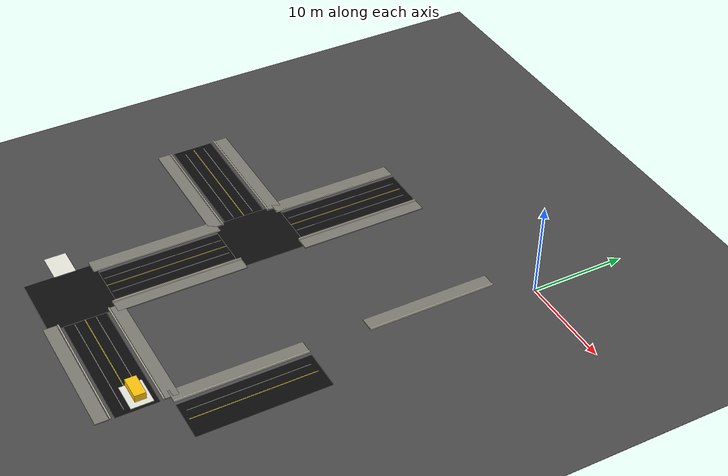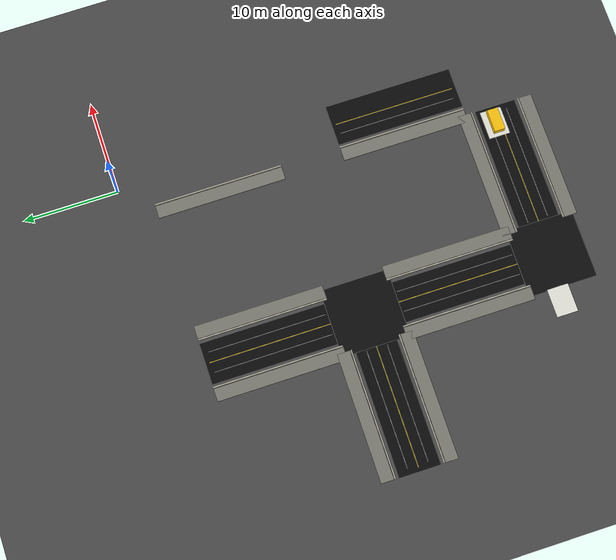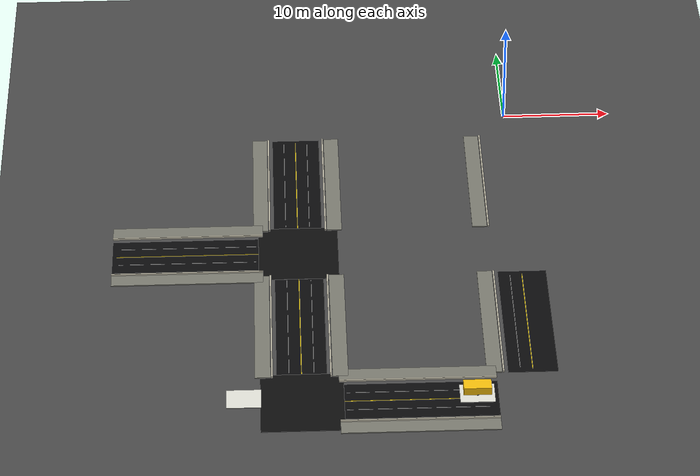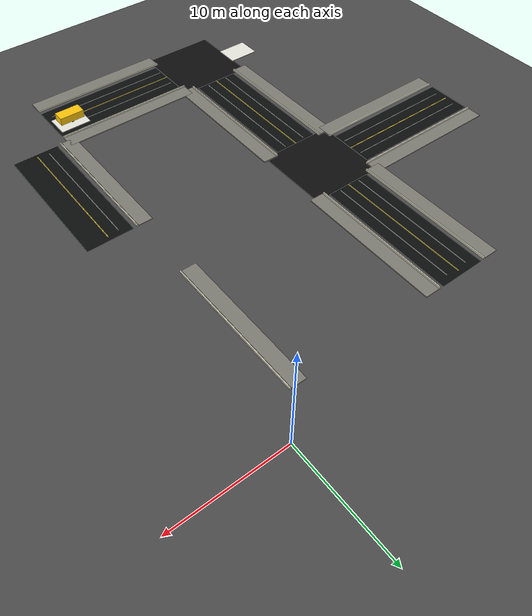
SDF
<sdf version="1.9">
 <world name="smart_city_world">
  <model name="ground">
   <static>true</static>
   <link name="link">
    <collision name="collision"><geometry><box><size>145 145 0.05</size></box></geometry></collision>
    <visual name="visual">
     <geometry><box><size>145 145 0.05</size></box></geometry>
     <material><ambient>0.30 0.30 0.30 1</ambient><diffuse>0.30 0.30 0.30 1</diffuse></material>
    </visual>
   </link>
  </model>
  <model name="road_e13">
   <static>true</static>
   <pose>-30.000 -20.000 0.018 0 0 0.000000</pose>
   <link name="link">
    <collision name="collision"><geometry><box><size>13.600 4.350 0.030</size></box></geometry></collision>
    <visual name="visual">
     <geometry><box><size>13.600 4.350 0.030</size></box></geometry>
     <material><ambient>0.045 0.047 0.05 1</ambient><diffuse>0.045 0.047 0.05 1</diffuse></material>
    </visual>
   </link>
  </model>
  <model name="center_line_e13">
   <static>true</static>
   <pose>-30.000 -20.000 0.052 0 0 0.000000</pose>
   <link name="link">
    <visual name="visual">
     <geometry><box><size>12.800 0.070 0.010</size></box></geometry>
     <material><ambient>1 0.86 0.05 1</ambient><diffuse>1 0.86 0.05 1</diffuse></material>
    </visual>
   </link>
  </model>
  <model name="sidewalk_e13_L">
   <static>true</static>
   <pose>-30.000 -16.650 0.075 0 0 0.000000</pose>
   <link name="link">
    <visual name="visual">
     <geometry><box><size>13.600 1.350 0.100</size></box></geometry>
     <material><ambient>0.5 0.5 0.46 1</ambient><diffuse>0.5 0.5 0.46 1</diffuse></material>
    </visual>
   </link>
  </model>
  <model name="curb_e13_L">
   <static>true</static>
   <pose>-30.000 -17.450 0.130 0 0 0.000000</pose>
   <link name="link">
    <visual name="visual">
     <geometry><box><size>13.600 0.120 0.180</size></box></geometry>
     <material><ambient>0.8 0.78 0.7 1</ambient><diffuse>0.8 0.78 0.7 1</diffuse></material>
    </visual>
   </link>
  </model>
  <model name="edge_line_e13_L">
   <static>true</static>
   <pose>-30.000 -18.920 0.054 0 0 0.000000</pose>
   <link name="link">
    <visual name="visual">
     <geometry><box><size>12.400 0.035 0.010</size></box></geometry>
     <material><ambient>0.85 0.85 0.85 1</ambient><diffuse>0.85 0.85 0.85 1</diffuse></material>
    </visual>
   </link>
  </model>
  <model name="sidewalk_e13_R">
   <static>true</static>
   <pose>-30.000 -23.350 0.075 0 0 0.000000</pose>
   <link name="link">
    <visual name="visual">
     <geometry><box><size>13.600 1.350 0.100</size></box></geometry>
     <material><ambient>0.5 0.5 0.46 1</ambient><diffuse>0.5 0.5 0.46 1</diffuse></material>
    </visual>
   </link>
  </model>
  <model name="curb_e13_R">
   <static>true</static>
   <pose>-30.000 -22.550 0.130 0 0 0.000000</pose>
   <link name="link">
    <visual name="visual">
     <geometry><box><size>13.600 0.120 0.180</size></box></geometry>
     <material><ambient>0.8 0.78 0.7 1</ambient><diffuse>0.8 0.78 0.7 1</diffuse></material>
    </visual>
   </link>
  </model>
  <model name="edge_line_e13_R">
   <static>true</static>
   <pose>-30.000 -21.080 0.054 0 0 0.000000</pose>
   <link name="link">
    <visual name="visual">
     <geometry><box><size>12.400 0.035 0.010</size></box></geometry>
     <material><ambient>0.85 0.85 0.85 1</ambient><diffuse>0.85 0.85 0.85 1</diffuse></material>
    </visual>
   </link>
  </model>
  <model name="road_e18">
   <static>true</static>
   <pose>-10.000 -40.000 0.018 0 0 0.000000</pose>
   <link name="link">
    <collision name="collision"><geometry><box><size>13.600 4.350 0.030</size></box></geometry></collision>
    <visual name="visual">
     <geometry><box><size>13.600 4.350 0.030</size></box></geometry>
     <material><ambient>0.045 0.047 0.05 1</ambient><diffuse>0.045 0.047 0.05 1</diffuse></material>
    </visual>
   </link>
  </model>
  <model name="center_line_e18">
   <static>true</static>
   <pose>-10.000 -40.000 0.052 0 0 0.000000</pose>
   <link name="link">
    <visual name="visual">
     <geometry><box><size>12.800 0.070 0.010</size></box></geometry>
     <material><ambient>1 0.86 0.05 1</ambient><diffuse>1 0.86 0.05 1</diffuse></material>
    </visual>
   </link>
  </model>
  <model name="sidewalk_e18_L">
   <static>true</static>
   <pose>-10.000 -36.650 0.075 0 0 0.000000</pose>
   <link name="link">
    <visual name="visual">
     <geometry><box><size>13.600 1.350 0.100</size></box></geometry>
     <material><ambient>0.5 0.5 0.46 1</ambient><diffuse>0.5 0.5 0.46 1</diffuse></material>
    </visual>
   </link>
  </model>
  <model name="curb_e18_L">
   <static>true</static>
   <pose>-10.000 -37.450 0.130 0 0 0.000000</pose>
   <link name="link">
    <visual name="visual">
     <geometry><box><size>13.600 0.120 0.180</size></box></geometry>
     <material><ambient>0.8 0.78 0.7 1</ambient><diffuse>0.8 0.78 0.7 1</diffuse></material>
    </visual>
   </link>
  </model>
  <model name="edge_line_e18_L">
   <static>true</static>
   <pose>-10.000 -38.920 0.054 0 0 0.000000</pose>
   <link name="link">
    <visual name="visual">
     <geometry><box><size>12.400 0.035 0.010</size></box></geometry>
     <material><ambient>0.85 0.85 0.85 1</ambient><diffuse>0.85 0.85 0.85 1</diffuse></material>
    </visual>
   </link>
  </model>
  <model name="sidewalk_e18_R">
   <static>true</static>
   <pose>-10.000 -43.350 0.075 0 0 0.000000</pose>
   <link name="link">
    <visual name="visual">
     <geometry><box><size>13.600 1.350 0.100</size></box></geometry>
     <material><ambient>0.5 0.5 0.46 1</ambient><diffuse>0.5 0.5 0.46 1</diffuse></material>
    </visual>
   </link>
  </model>
  <model name="curb_e18_R">
   <static>true</static>
   <pose>-10.000 -42.550 0.130 0 0 0.000000</pose>
   <link name="link">
    <visual name="visual">
     <geometry><box><size>13.600 0.120 0.180</size></box></geometry>
     <material><ambient>0.8 0.78 0.7 1</ambient><diffuse>0.8 0.78 0.7 1</diffuse></material>
    </visual>
   </link>
  </model>
  <model name="edge_line_e18_R">
   <static>true</static>
   <pose>-10.000 -41.080 0.054 0 0 0.000000</pose>
   <link name="link">
    <visual name="visual">
     <geometry><box><size>12.400 0.035 0.010</size></box></geometry>
     <material><ambient>0.85 0.85 0.85 1</ambient><diffuse>0.85 0.85 0.85 1</diffuse></material>
    </visual>
   </link>
  </model>
  <model name="road_e27">
   <static>true</static>
   <pose>-20.000 -10.000 0.018 0 0 -1.570796</pose>
   <link name="link">
    <collision name="collision"><geometry><box><size>13.600 4.350 0.030</size></box></geometry></collision>
    <visual name="visual">
     <geometry><box><size>13.600 4.350 0.030</size></box></geometry>
     <material><ambient>0.045 0.047 0.05 1</ambient><diffuse>0.045 0.047 0.05 1</diffuse></material>
    </visual>
   </link>
  </model>
  <model name="center_line_e27">
   <static>true</static>
   <pose>-20.000 -10.000 0.052 0 0 -1.570796</pose>
   <link name="link">
    <visual name="visual">
     <geometry><box><size>12.800 0.070 0.010</size></box></geometry>
     <material><ambient>1 0.86 0.05 1</ambient><diffuse>1 0.86 0.05 1</diffuse></material>
    </visual>
   </link>
  </model>
  <model name="sidewalk_e27_L">
   <static>true</static>
   <pose>-16.650 -10.000 0.075 0 0 -1.570796</pose>
   <link name="link">
    <visual name="visual">
     <geometry><box><size>13.600 1.350 0.100</size></box></geometry>
     <material><ambient>0.5 0.5 0.46 1</ambient><diffuse>0.5 0.5 0.46 1</diffuse></material>
    </visual>
   </link>
  </model>
  <model name="curb_e27_L">
   <static>true</static>
   <pose>-17.450 -10.000 0.130 0 0 -1.570796</pose>
   <link name="link">
    <visual name="visual">
     <geometry><box><size>13.600 0.120 0.180</size></box></geometry>
     <material><ambient>0.8 0.78 0.7 1</ambient><diffuse>0.8 0.78 0.7 1</diffuse></material>
    </visual>
   </link>
  </model>
  <model name="edge_line_e27_L">
   <static>true</static>
   <pose>-18.920 -10.000 0.054 0 0 -1.570796</pose>
   <link name="link">
    <visual name="visual">
     <geometry><box><size>12.400 0.035 0.010</size></box></geometry>
     <material><ambient>0.85 0.85 0.85 1</ambient><diffuse>0.85 0.85 0.85 1</diffuse></material>
    </visual>
   </link>
  </model>
  <model name="sidewalk_e27_R">
   <static>true</static>
   <pose>-23.350 -10.000 0.075 0 0 -1.570796</pose>
   <link name="link">
    <visual name="visual">
     <geometry><box><size>13.600 1.350 0.100</size></box></geometry>
     <material><ambient>0.5 0.5 0.46 1</ambient><diffuse>0.5 0.5 0.46 1</diffuse></material>
    </visual>
   </link>
  </model>
  <model name="curb_e27_R">
   <static>true</static>
   <pose>-22.550 -10.000 0.130 0 0 -1.570796</pose>
   <link name="link">
    <visual name="visual">
     <geometry><box><size>13.600 0.120 0.180</size></box></geometry>
     <material><ambient>0.8 0.78 0.7 1</ambient><diffuse>0.8 0.78 0.7 1</diffuse></material>
    </visual>
   </link>
  </model>
  <model name="edge_line_e27_R">
   <static>true</static>
   <pose>-21.080 -10.000 0.054 0 0 -1.570796</pose>
   <link name="link">
    <visual name="visual">
     <geometry><box><size>12.400 0.035 0.010</size></box></geometry>
     <material><ambient>0.85 0.85 0.85 1</ambient><diffuse>0.85 0.85 0.85 1</diffuse></material>
    </visual>
   </link>
  </model>
  <model name="road_e28">
   <static>true</static>
   <pose>-20.000 -30.000 0.018 0 0 -1.570796</pose>
   <link name="link">
    <collision name="collision"><geometry><box><size>13.600 4.350 0.030</size></box></geometry></collision>
    <visual name="visual">
     <geometry><box><size>13.600 4.350 0.030</size></box></geometry>
     <material><ambient>0.045 0.047 0.05 1</ambient><diffuse>0.045 0.047 0.05 1</diffuse></material>
    </visual>
   </link>
  </model>
  <model name="center_line_e28">
   <static>true</static>
   <pose>-20.000 -30.000 0.052 0 0 -1.570796</pose>
   <link name="link">
    <visual name="visual">
     <geometry><box><size>12.800 0.070 0.010</size></box></geometry>
     <material><ambient>1 0.86 0.05 1</ambient><diffuse>1 0.86 0.05 1</diffuse></material>
    </visual>
   </link>
  </model>
  <model name="sidewalk_e28_L">
   <static>true</static>
   <pose>-16.650 -30.000 0.075 0 0 -1.570796</pose>
   <link name="link">
    <visual name="visual">
     <geometry><box><size>13.600 1.350 0.100</size></box></geometry>
     <material><ambient>0.5 0.5 0.46 1</ambient><diffuse>0.5 0.5 0.46 1</diffuse></material>
    </visual>
   </link>
  </model>
  <model name="curb_e28_L">
   <static>true</static>
   <pose>-17.450 -30.000 0.130 0 0 -1.570796</pose>
   <link name="link">
    <visual name="visual">
     <geometry><box><size>13.600 0.120 0.180</size></box></geometry>
     <material><ambient>0.8 0.78 0.7 1</ambient><diffuse>0.8 0.78 0.7 1</diffuse></material>
    </visual>
   </link>
  </model>
  <model name="edge_line_e28_L">
   <static>true</static>
   <pose>-18.920 -30.000 0.054 0 0 -1.570796</pose>
   <link name="link">
    <visual name="visual">
     <geometry><box><size>12.400 0.035 0.010</size></box></geometry>
     <material><ambient>0.85 0.85 0.85 1</ambient><diffuse>0.85 0.85 0.85 1</diffuse></material>
    </visual>
   </link>
  </model>
  <model name="sidewalk_e28_R">
   <static>true</static>
   <pose>-23.350 -30.000 0.075 0 0 -1.570796</pose>
   <link name="link">
    <visual name="visual">
     <geometry><box><size>13.600 1.350 0.100</size></box></geometry>
     <material><ambient>0.5 0.5 0.46 1</ambient><diffuse>0.5 0.5 0.46 1</diffuse></material>
    </visual>
   </link>
  </model>
  <model name="curb_e28_R">
   <static>true</static>
   <pose>-22.550 -30.000 0.130 0 0 -1.570796</pose>
   <link name="link">
    <visual name="visual">
     <geometry><box><size>13.600 0.120 0.180</size></box></geometry>
     <material><ambient>0.8 0.78 0.7 1</ambient><diffuse>0.8 0.78 0.7 1</diffuse></material>
    </visual>
   </link>
  </model>
  <model name="edge_line_e28_R">
   <static>true</static>
   <pose>-21.080 -30.000 0.054 0 0 -1.570796</pose>
   <link name="link">
    <visual name="visual">
     <geometry><box><size>12.400 0.035 0.010</size></box></geometry>
     <material><ambient>0.85 0.85 0.85 1</ambient><diffuse>0.85 0.85 0.85 1</diffuse></material>
    </visual>
   </link>
  </model>
  <model name="sidewalk_e31_R">
   <static>true</static>
   <pose>-3.350 -10.000 0.075 0 0 -1.570796</pose>
   <link name="link">
    <visual name="visual">
     <geometry><box><size>13.600 1.350 0.100</size></box></geometry>
     <material><ambient>0.5 0.5 0.46 1</ambient><diffuse>0.5 0.5 0.46 1</diffuse></material>
    </visual>
   </link>
  </model>
  <model name="curb_e31_R">
   <static>true</static>
   <pose>-2.550 -10.000 0.130 0 0 -1.570796</pose>
   <link name="link">
    <visual name="visual">
     <geometry><box><size>13.600 0.120 0.180</size></box></geometry>
     <material><ambient>0.8 0.78 0.7 1</ambient><diffuse>0.8 0.78 0.7 1</diffuse></material>
    </visual>
   </link>
  </model>
  <model name="road_e32">
   <static>true</static>
   <pose>0.000 -30.000 0.018 0 0 -1.570796</pose>
   <link name="link">
    <collision name="collision"><geometry><box><size>13.600 4.350 0.030</size></box></geometry></collision>
    <visual name="visual">
     <geometry><box><size>13.600 4.350 0.030</size></box></geometry>
     <material><ambient>0.045 0.047 0.05 1</ambient><diffuse>0.045 0.047 0.05 1</diffuse></material>
    </visual>
   </link>
  </model>
  <model name="center_line_e32">
   <static>true</static>
   <pose>0.000 -30.000 0.052 0 0 -1.570796</pose>
   <link name="link">
    <visual name="visual">
     <geometry><box><size>12.800 0.070 0.010</size></box></geometry>
     <material><ambient>1 0.86 0.05 1</ambient><diffuse>1 0.86 0.05 1</diffuse></material>
    </visual>
   </link>
  </model>
  <model name="sidewalk_e32_R">
   <static>true</static>
   <pose>-3.350 -30.000 0.075 0 0 -1.570796</pose>
   <link name="link">
    <visual name="visual">
     <geometry><box><size>13.600 1.350 0.100</size></box></geometry>
     <material><ambient>0.5 0.5 0.46 1</ambient><diffuse>0.5 0.5 0.46 1</diffuse></material>
    </visual>
   </link>
  </model>
  <model name="curb_e32_R">
   <static>true</static>
   <pose>-2.550 -30.000 0.130 0 0 -1.570796</pose>
   <link name="link">
    <visual name="visual">
     <geometry><box><size>13.600 0.120 0.180</size></box></geometry>
     <material><ambient>0.8 0.78 0.7 1</ambient><diffuse>0.8 0.78 0.7 1</diffuse></material>
    </visual>
   </link>
  </model>
  <model name="edge_line_e32_R">
   <static>true</static>
   <pose>-1.080 -30.000 0.054 0 0 -1.570796</pose>
   <link name="link">
    <visual name="visual">
     <geometry><box><size>12.400 0.035 0.010</size></box></geometry>
     <material><ambient>0.85 0.85 0.85 1</ambient><diffuse>0.85 0.85 0.85 1</diffuse></material>
    </visual>
   </link>
  </model>
  <model name="intersection_plate_n17">
   <static>true</static>
   <pose>-20.000 -20.000 0.025 0 0 0.000000</pose>
   <link name="link">
    <collision name="collision"><geometry><box><size>7.200 7.200 0.035</size></box></geometry></collision>
    <visual name="visual">
     <geometry><box><size>7.200 7.200 0.035</size></box></geometry>
     <material><ambient>0.055 0.055 0.058 1</ambient><diffuse>0.055 0.055 0.058 1</diffuse></material>
    </visual>
   </link>
  </model>
  <model name="intersection_plate_n22">
   <static>true</static>
   <pose>-20.000 -40.000 0.025 0 0 0.000000</pose>
   <link name="link">
    <collision name="collision"><geometry><box><size>7.200 7.200 0.035</size></box></geometry></collision>
    <visual name="visual">
     <geometry><box><size>7.200 7.200 0.035</size></box></geometry>
     <material><ambient>0.055 0.055 0.058 1</ambient><diffuse>0.055 0.055 0.058 1</diffuse></material>
    </visual>
   </link>
  </model>
  <model name="parking_taxi_3">
   <static>true</static>
   <pose>-5.000 -39.400 0.052 0 0 0.000000</pose>
   <link name="link">
    <collision name="collision"><geometry><box><size>3.000 2.250 0.050</size></box></geometry></collision>
    <visual name="visual">
     <geometry><box><size>3.000 2.250 0.050</size></box></geometry>
     <material><ambient>0.92 0.92 0.88 1</ambient><diffuse>0.92 0.92 0.88 1</diffuse></material>
    </visual>
   </link>
  </model>
  <model name="parking_taxi_4">
   <static>true</static>
   <pose>-25.000 -39.400 0.052 0 0 0.000000</pose>
   <link name="link">
    <collision name="collision"><geometry><box><size>3.000 2.250 0.050</size></box></geometry></collision>
    <visual name="visual">
     <geometry><box><size>3.000 2.250 0.050</size></box></geometry>
     <material><ambient>0.92 0.92 0.88 1</ambient><diffuse>0.92 0.92 0.88 1</diffuse></material>
    </visual>
   </link>
  </model>
  <model name="taxi_3">
   <pose>-5.000 -39.400 0.28 0 0 3.1400</pose>
   <link name="base_link">
    <inertial>
     <pose>0 0 0.18 0 0 0</pose>
     <mass>1200</mass>
     <inertia><ixx>190</ixx><iyy>635</iyy><izz>710</izz><ixy>0</ixy><ixz>0</ixz><iyz>0</iyz></inertia>
    </inertial>
    <collision name="body_collision">
     <pose>0 0 0.48 0 0 0</pose>
     <geometry><box><size>2.4 1.15 0.75</size></box></geometry>
     <surface>
      <friction><ode><mu>4.0</mu><mu2>4.0</mu2><slip1>0.0</slip1><slip2>0.0</slip2></ode></friction>
      <contact>
       <ode><kp>1200000</kp><kd>24000</kd><max_vel>0.05</max_vel><min_depth>0.001</min_depth></ode>
      </contact>
      <bounce><restitution_coefficient>0.0</restitution_coefficient><threshold>100000.0</threshold></bounce>
     </surface>
    </collision>
    <visual name="body_visual">
     <pose>0 0 0.48 0 0 0</pose>
     <geometry><box><size>2.4 1.15 0.75</size></box></geometry>
     <material><ambient>1.00 0.78 0.05 1</ambient><diffuse>1.00 0.78 0.05 1</diffuse></material>
    </visual>
    <sensor name="lidar" type="gpu_lidar">
     <pose>1.320 0 1.350 0 0 0</pose>
     <topic>/taxi_3/scan</topic>
     <update_rate>10</update_rate>
     <lidar>
      <scan>
       <horizontal>
        <samples>360</samples>
        <resolution>1</resolution>
        <min_angle>-3.14159</min_angle>
        <max_angle>3.14159</max_angle>
       </horizontal>
      </scan>
      <range><min>0.12</min><max>18.0</max><resolution>0.03</resolution></range>
     </lidar>
     <always_on>1</always_on>
     <visualize>false</visualize>
    </sensor>
   </link>
   <link name="left_wheel">
    <pose>0 0.460 0.180 1.5708 0 0</pose>
    <collision name="collision">
     <geometry><cylinder><radius>0.18</radius><length>0.16</length></cylinder></geometry>
     <surface>
      <friction><ode><mu>4.0</mu><mu2>4.0</mu2><slip1>0.0</slip1><slip2>0.0</slip2></ode></friction>
      <contact>
       <ode><kp>1200000</kp><kd>24000</kd><max_vel>0.05</max_vel><min_depth>0.001</min_depth></ode>
      </contact>
      <bounce><restitution_coefficient>0.0</restitution_coefficient><threshold>100000.0</threshold></bounce>
     </surface>
    </collision>
    <visual name="visual">
     <geometry><cylinder><radius>0.18</radius><length>0.16</length></cylinder></geometry>
     <material><ambient>0.01 0.01 0.01 1</ambient><diffuse>0.01 0.01 0.01 1</diffuse></material>
    </visual>
   </link>
   <link name="right_wheel">
    <pose>0 -0.460 0.180 1.5708 0 0</pose>
    <collision name="collision">
     <geometry><cylinder><radius>0.18</radius><length>0.16</length></cylinder></geometry>
     <surface>
      <friction><ode><mu>4.0</mu><mu2>4.0</mu2><slip1>0.0</slip1><slip2>0.0</slip2></ode></friction>
      <contact>
       <ode><kp>1200000</kp><kd>24000</kd><max_vel>0.05</max_vel><min_depth>0.001</min_depth></ode>
      </contact>
      <bounce><restitution_coefficient>0.0</restitution_coefficient><threshold>100000.0</threshold></bounce>
     </surface>
    </collision>
    <visual name="visual">
     <geometry><cylinder><radius>0.18</radius><length>0.16</length></cylinder></geometry>
     <material><ambient>0.01 0.01 0.01 1</ambient><diffuse>0.01 0.01 0.01 1</diffuse></material>
    </visual>
   </link>
   <joint name="left_wheel_joint" type="revolute">
    <parent>base_link</parent>
    <child>left_wheel</child>
    <axis>
     <xyz>0 0 1</xyz>
     <limit><lower>-1e16</lower><upper>1e16</upper></limit>
     <dynamics><damping>2.5</damping><friction>0.8</friction></dynamics>
    </axis>
   </joint>
   <joint name="right_wheel_joint" type="revolute">
    <parent>base_link</parent>
    <child>right_wheel</child>
    <axis>
     <xyz>0 0 1</xyz>
     <limit><lower>-1e16</lower><upper>1e16</upper></limit>
     <dynamics><damping>2.5</damping><friction>0.8</friction></dynamics>
    </axis>
   </joint>
   <plugin filename="gz-sim-diff-drive-system" name="gz::sim::systems::DiffDrive">
    <left_joint>left_wheel_joint</left_joint>
    <right_joint>right_wheel_joint</right_joint>
    <wheel_separation>0.92</wheel_separation>
    <wheel_radius>0.18</wheel_radius>
    <topic>/taxi_3/cmd_vel</topic>
    <odom_topic>/taxi_3/odom</odom_topic>
    <frame_id>taxi_3/odom</frame_id>
    <child_frame_id>taxi_3/base_link</child_frame_id>
    <odom_publish_frequency>30</odom_publish_frequency>
   </plugin>
   <plugin filename="libmodel_world_pose_publisher.so" name="smart_city::ModelWorldPosePublisher"/>
  </model>
 </world>
</sdf>
